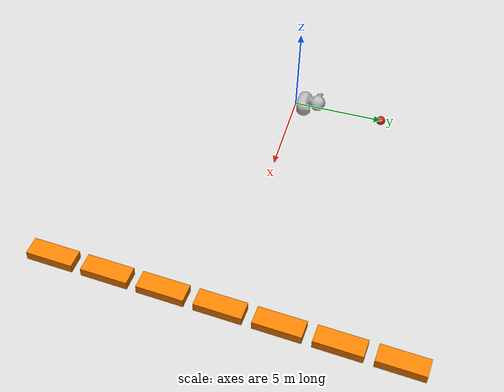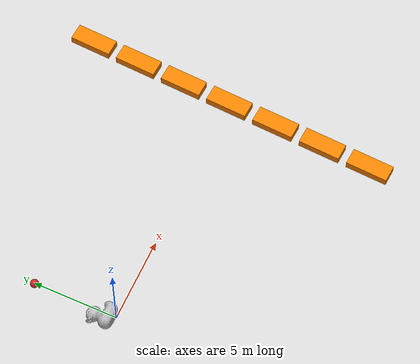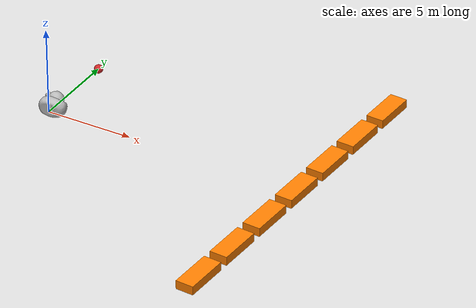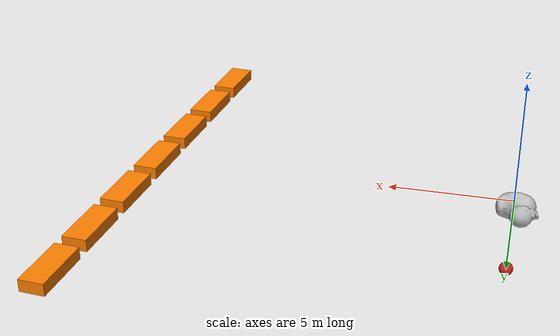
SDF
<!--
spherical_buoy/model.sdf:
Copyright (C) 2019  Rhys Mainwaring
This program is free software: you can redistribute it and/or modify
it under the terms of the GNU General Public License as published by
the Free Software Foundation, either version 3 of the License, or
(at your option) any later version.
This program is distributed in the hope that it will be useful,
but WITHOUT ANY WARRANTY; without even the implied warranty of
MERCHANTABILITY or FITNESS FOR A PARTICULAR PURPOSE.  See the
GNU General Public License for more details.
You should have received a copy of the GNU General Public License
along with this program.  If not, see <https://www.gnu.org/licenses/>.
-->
<sdf version="1.6">
 <world name="waves">
  <plugin filename="ignition-gazebo-physics-system" name="ignition::gazebo::systems::Physics"/>
  <plugin filename="ignition-gazebo-sensors-system" name="ignition::gazebo::systems::Sensors">
   <render_engine>ogre2</render_engine>
   <background_color>0.8 0.8 0.8</background_color>
  </plugin>
  <plugin filename="ignition-gazebo-scene-broadcaster-system" name="ignition::gazebo::systems::SceneBroadcaster"/>
  <plugin filename="ignition-gazebo-user-commands-system" name="ignition::gazebo::systems::UserCommands"/>
  <scene><ambient>1.0 1.0 1.0</ambient><background>0.8 0.8 0.8</background></scene>
  <light type="directional" name="sun">
   <pose>0 0 10 0 0 0</pose>
   <diffuse>0.8 0.8 0.8 1</diffuse>
   <specular>0.6 0.6 0.6 1</specular>
   <direction>-0.5 0.1 -0.9</direction>
  </light>
  <include><uri>model://waves</uri></include>
  <include><pose>0 0 0 0 0 3.14</pose><uri>model://duck</uri></include>
  <include><pose>0 5 0 0 0 0</pose><uri>model://spherical_buoy</uri></include>
  <include><pose>15 0 0 0 0 1.51</pose><uri>model://barrage</uri></include>
 </world>
</sdf>

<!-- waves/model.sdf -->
<sdf version="1.6">
  <model name="waves">
    <static>true</static>

    <plugin
        filename="ignition-marine1-waves-model-system"
        name="ignition::gazebo::systems::WavesModel">
    </plugin>

    <link name="base_link">
      <visual name="visual">
        <geometry>
          <sphere>
            <radius>0.01</radius>
          </sphere>
        </geometry>

        <plugin
            filename="ignition-marine1-waves-visual-system"
            name="ignition::gazebo::systems::WavesVisual">
          <shader>
            <vertex>materials/waves_vs.metal</vertex>
            <fragment>materials/waves_fs.metal</fragment>
          </shader>

          <param>
            <shader>vertex</shader>
            <name>worldviewproj_matrix</name>
          </param>
          <param>
            <shader>vertex</shader>
            <name>camera_position_object_space</name>
          </param>
          <param>
            <shader>vertex</shader>
            <name>rescale</name>
            <value>0.5</value>
            <type>float</type>
          </param>
          <param>
            <shader>vertex</shader>
            <name>bumpScale</name>
            <value>25.0 25.0</value>
            <type>float_array</type>
          </param>
          <param>
            <shader>vertex</shader>
            <name>bumpSpeed</name>
            <value>0.01 0.01</value>
            <type>float_array</type>
          </param>
          <param>
            <shader>vertex</shader>
            <name>t</name>
            <value>TIME</value>
          </param>

          <param>
            <shader>fragment</shader>
            <name>deepColor</name>
            <value>0.0 0.05 0.2 1.0</value>
            <type>float_array</type>
          </param>
          <param>
            <shader>fragment</shader>
            <name>shallowColor</name>
            <value>0.0 0.1 0.3 1.0</value>
            <type>float_array</type>
          </param>
          <param>
            <shader>fragment</shader>
            <name>fresnelPower</name>
            <value>5.0</value>
            <type>float</type>
          </param>
          <param>
            <shader>fragment</shader>
            <name>hdrMultiplier</name>
            <value>0.4</value>
            <type>float</type>
          </param>
          <param>
            <shader>fragment</shader>
            <name>cubeMap</name>
            <value>materials/skybox_lowres.dds</value>
            <type>texture_cube</type>
          </param>
          <param>
            <shader>fragment</shader>
            <name>bumpMap</name>
            <value>materials/wave_normals.dds</value>
            <type>texture</type>
          </param>
        </plugin>

      </visual>
    </link>
  </model>
</sdf>

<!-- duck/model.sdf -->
<sdf version='1.6'>
  <model name='duck'>
    <static>false</static>
    <plugin
        filename="ignition-marine1-hydrodynamics-system"
        name="ignition::gazebo::systems::Hydrodynamics">
    </plugin>
    <link name="base_link">
      <visual name="base_visual">
        <pose>0 0 0 1.5708 0 0</pose>
        <geometry>
          <mesh>
            <uri>model://duck/meshes/duck.dae</uri>
          </mesh>
        </geometry>
      </visual>
      <collision name="base_collision">
        <pose>0 0 0 0 0 0</pose>
        <geometry>
          <mesh>
            <uri>model://duck/meshes/duck_collision.stl</uri>
          </mesh>
        </geometry>
      </collision>
      <inertial>
        <pose>0 0 0 0 0 0</pose>
        <mass>400</mass>
        <inertia>
          <ixx>266</ixx>
          <ixy>0</ixy>
          <iyy>266</iyy>
          <iyz>0</iyz>
          <izz>266</izz>
        </inertia>
      </inertial>
    </link>
  </model>
</sdf>

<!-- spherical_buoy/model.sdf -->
<sdf version="1.6">
  <model name="spherical_buoy">
    <static>false</static>

    <plugin name="hydrodynamics" filename="libHydrodynamicsPlugin.so">
      <!-- Wave Model -->
      <wave_model>ocean_waves</wave_model>

      <!-- Hydrodynamics -->
      <damping_on>true</damping_on>
      <viscous_drag_on>true</viscous_drag_on>
      <pressure_drag_on>true</pressure_drag_on>

      <!-- Markers -->
      <markers>
        <update_rate>30</update_rate>
        <water_patch>false</water_patch>
        <waterline>false</waterline>
        <underwater_surface>false</underwater_surface>
      </markers>
    </plugin>

    <link name="base_link">
      <visual name="base_visual">
        <geometry>
          <sphere>
            <radius>0.25</radius>
          </sphere>
        </geometry>
        <material>
          <script>
            <name>Gazebo/Red</name>
          </script>
        </material>
      </visual>

      <collision name="base_collision">
        <geometry>
          <sphere>
            <radius>0.25</radius>
          </sphere>
        </geometry>
      </collision>

      <!-- Mass and inertial assume volume is 0.1 densitity of water -->
      <inertial>
        <mass>6.545</mass>
        <inertia>
          <ixx>0.1636</ixx>
          <ixy>0.0</ixy>
          <ixz>0.0</ixz>
          <iyy>0.1636</iyy>
          <iyz>0.0</iyz>
          <izz>0.1636</izz>
        </inertia>
      </inertial>

    </link>

    <!-- Chain -->

  </model>
</sdf>

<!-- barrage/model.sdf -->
<sdf version="1.6">

  <model name="barrage">
    <static>false</static>

    <plugin name="hydrodynamics" filename="libHydrodynamicsPlugin.so">
      <!-- Wave Model -->
      <wave_model>ocean_waves</wave_model>

      <!-- Hydrodynamics -->
      <damping_on>true</damping_on>
      <viscous_drag_on>true</viscous_drag_on>
      <pressure_drag_on>true</pressure_drag_on>

      <!-- Markers -->
      <markers>
        <update_rate>30</update_rate>
        <water_patch>false</water_patch>
        <waterline>false</waterline>
        <underwater_surface>false</underwater_surface>
      </markers>
    </plugin>

    <include>
      <pose>0 0 0 0 0 0</pose>
      <uri>model://barrage_buoy</uri>
      <name>asv_barrage_buoy0</name>
    </include>

    <include>
      <pose>-3.0 0 0 0 0 0</pose>
      <uri>model://barrage_buoy</uri>
      <name>barrage_buoy-1</name>
    </include>

    <include>
      <pose>3.0 0 0 0 0 0</pose>
      <uri>model://barrage_buoy</uri>
      <name>barrage_buoy+1</name>
    </include>

    <include>
      <pose>-6.0 0 0 0 0 0</pose>
      <uri>model://barrage_buoy</uri>
      <name>barrage_buoy-2</name>
    </include>

    <include>
      <pose>6.0 0 0 0 0 0</pose>
      <uri>model://barrage_buoy</uri>
      <name>barrage_buoy+2</name>
    </include>

    <include>
      <pose>-9.0 0 0 0 0 0</pose>
      <uri>model://barrage_buoy</uri>
      <name>barrage_buoy-3</name>
    </include>

    <include>
      <pose>9.0 0 0 0 0 0</pose>
      <uri>model://barrage_buoy</uri>
      <name>barrage_buoy+3</name>
    </include>

    <joint type="universal" name="barrage_buoy_0_-1_joint">
      <pose>1.5 0 0 0 0 0</pose>
      <child>barrage_buoy-1::base_link</child>
      <parent>asv_barrage_buoy0::base_link</parent>
      <axis>
        <xyz>0 1 0</xyz>
        <limit>
          <lower>-0.78539</lower>
          <upper>0.78539</upper>
        </limit>
      </axis>
      <axis2>
        <xyz>0 0 1</xyz>
        <limit>
          <lower>-0.78539</lower>
          <upper>0.78539</upper>
        </limit>
      </axis2>
    </joint>

    <joint type="universal" name="barrage_buoy_0_+1_joint">
      <pose>-1.5 0 0 0 0 0</pose>
      <child>barrage_buoy+1::base_link</child>
      <parent>asv_barrage_buoy0::base_link</parent>
      <axis>
        <xyz>0 1 0</xyz>
        <limit>
          <lower>-0.78539</lower>
          <upper>0.78539</upper>
        </limit>
      </axis>
      <axis2>
        <xyz>0 0 1</xyz>
        <limit>
          <lower>-0.78539</lower>
          <upper>0.78539</upper>
        </limit>
      </axis2>
    </joint>

    <joint type="universal" name="barrage_buoy_-1_-2_joint">
      <pose>1.5 0 0 0 0 0</pose>
      <child>barrage_buoy-2::base_link</child>
      <parent>barrage_buoy-1::base_link</parent>
      <axis>
        <xyz>0 1 0</xyz>
        <limit>
          <lower>-0.78539</lower>
          <upper>0.78539</upper>
        </limit>
      </axis>
      <axis2>
        <xyz>0 0 1</xyz>
        <limit>
          <lower>-0.78539</lower>
          <upper>0.78539</upper>
        </limit>
      </axis2>
    </joint>

    <joint type="universal" name="barrage_buoy_+1_+2_joint">
      <pose>-1.5 0 0 0 0 0</pose>
      <child>barrage_buoy+2::base_link</child>
      <parent>barrage_buoy+1::base_link</parent>
      <axis>
        <xyz>0 1 0</xyz>
        <limit>
          <lower>-0.78539</lower>
          <upper>0.78539</upper>
        </limit>
      </axis>
      <axis2>
        <xyz>0 0 1</xyz>
        <limit>
          <lower>-0.78539</lower>
          <upper>0.78539</upper>
        </limit>
      </axis2>
    </joint>

    <joint type="universal" name="barrage_buoy_-2_-3_joint">
      <pose>1.5 0 0 0 0 0</pose>
      <child>barrage_buoy-3::base_link</child>
      <parent>barrage_buoy-2::base_link</parent>
      <axis>
        <xyz>0 1 0</xyz>
        <limit>
          <lower>-0.78539</lower>
          <upper>0.78539</upper>
        </limit>
      </axis>
      <axis2>
        <xyz>0 0 1</xyz>
        <limit>
          <lower>-0.78539</lower>
          <upper>0.78539</upper>
        </limit>
      </axis2>
    </joint>

    <joint type="universal" name="barrage_buoy_+2_+3_joint">
      <pose>-1.5 0 0 0 0 0</pose>
      <child>barrage_buoy+3::base_link</child>
      <parent>barrage_buoy+2::base_link</parent>
      <axis>
        <xyz>0 1 0</xyz>
        <limit>
          <lower>-0.78539</lower>
          <upper>0.78539</upper>
        </limit>
      </axis>
      <axis2>
        <xyz>0 0 1</xyz>
        <limit>
          <lower>-0.78539</lower>
          <upper>0.78539</upper>
        </limit>
      </axis2>
    </joint>

  </model>
</sdf>

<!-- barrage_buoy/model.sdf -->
<sdf version="1.6">
  <model name="barrage_buoy">
    <plugin
        filename="ignition-marine1-hydrodynamics-system"
        name="ignition::gazebo::systems::Hydrodynamics">
    </plugin>
    <link name="base_link">
      <visual name="visual">
        <geometry>
          <box>
            <size>2.5 1 0.5</size>
          </box>
        </geometry>
        <material>
          <ambient>1.0 0.5 0.0 1.0</ambient>
          <diffuse>1.0 0.5 0.0 1.0</diffuse>
          <specular>0.8 0.8 0.8 1.0</specular>
        </material>
      </visual>
      <collision name="collision">
        <geometry>
          <box>
            <size>2.5 1 0.5</size>
          </box>
        </geometry>
      </collision>
      <inertial>
        <mass>312.5</mass>
        <inertia>
          <ixx>32.5</ixx>
          <ixy>0.0</ixy>
          <ixz>0.0</ixz>
          <iyy>169.3</iyy>
          <iyz>0.0</iyz>
          <izz>188.8</izz>
        </inertia>
      </inertial>
    </link>
  </model>
</sdf>
